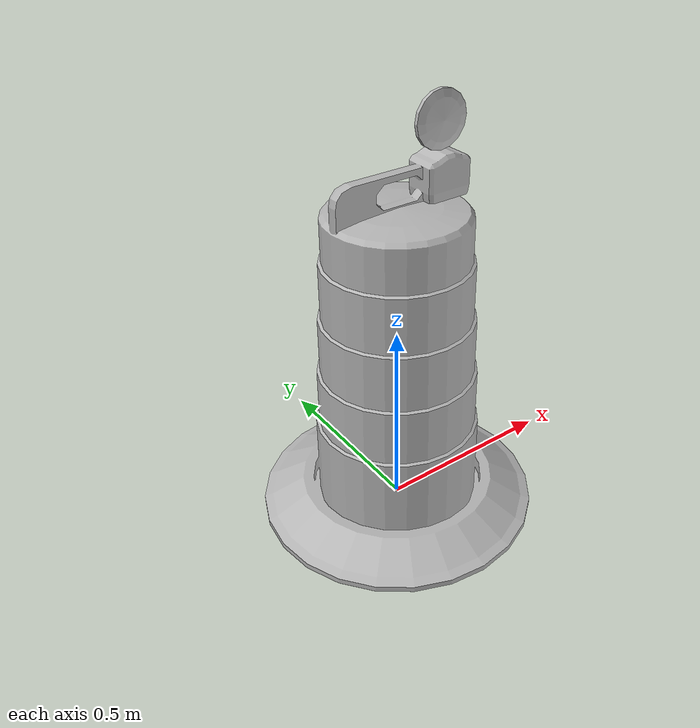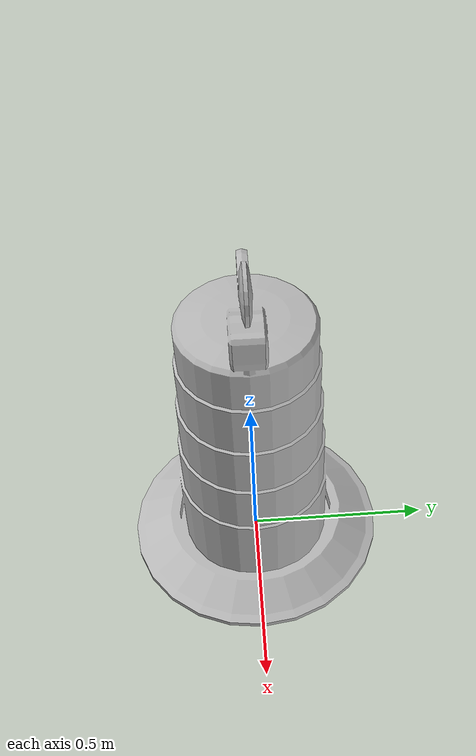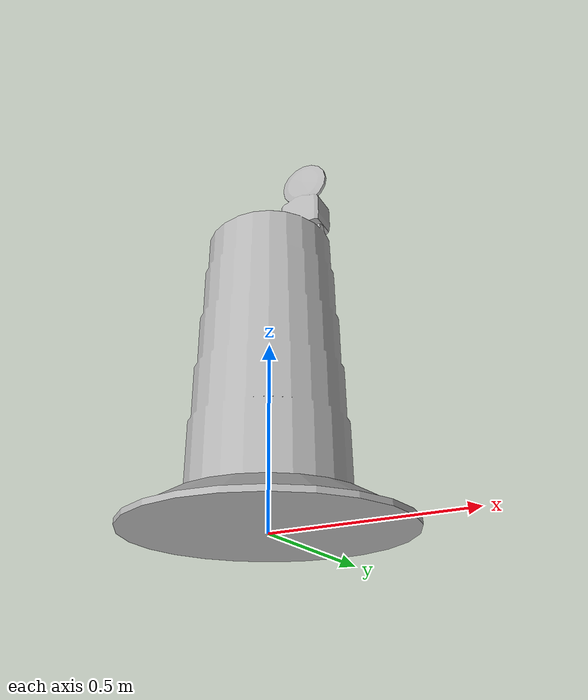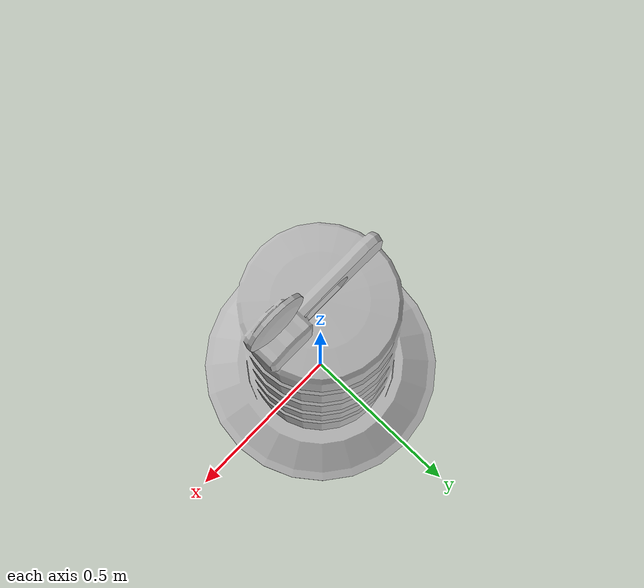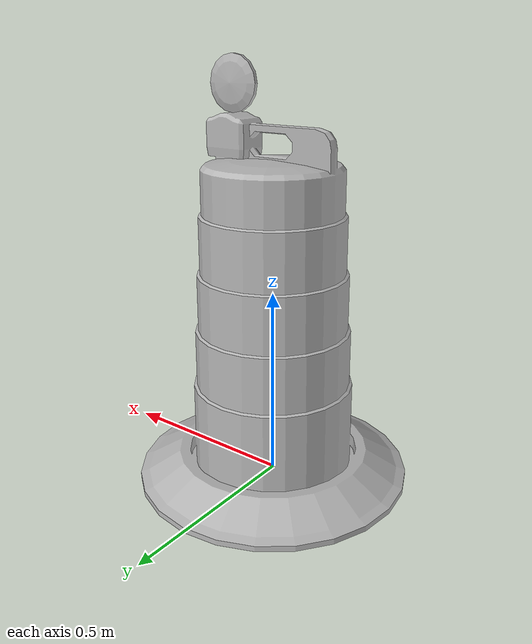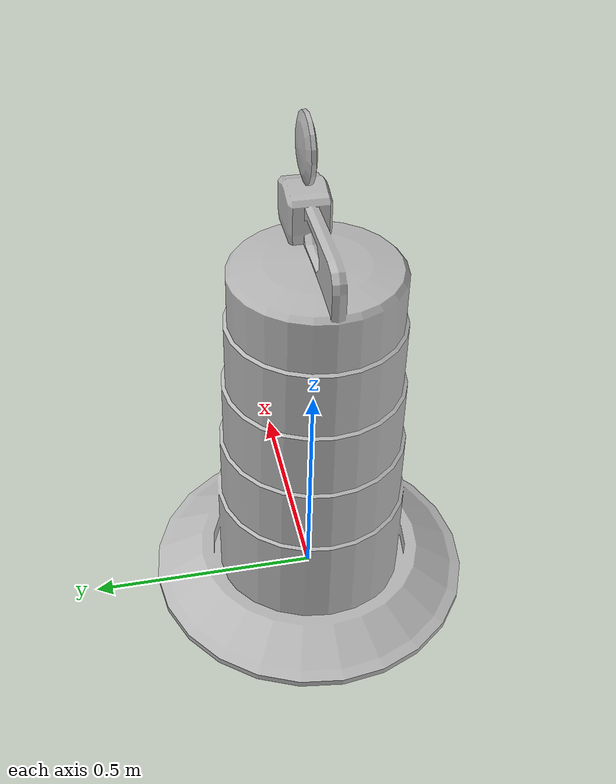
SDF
<?xml version="1.0" ?>
<sdf version="1.5">
  <model name="Construction Barrel">
    <link name="link">
      <inertial>
        <pose>0 0 0.4 0 0 0</pose>
        <mass>500</mass>
        <inertia>
          <ixx>51.2096</ixx>
          <iyy>51.2096</iyy>
          <izz>25</izz>
          <ixy>0</ixy>
          <ixz>0</ixz>
        </inertia>
      </inertial>
      <collision name="collision">
        <geometry>
          <mesh>
            <uri>model://construction_barrel/meshes/construction_barrel.dae</uri>
            <scale>0.7 0.7 0.7</scale>
          </mesh>
        </geometry>
      </collision>
      <visual name="visual">
        <geometry>
          <mesh>
            <uri>model://construction_barrel/meshes/construction_barrel.dae</uri>
            <scale>0.7 0.7 0.7</scale>
          </mesh>
        </geometry>
      </visual>
    </link>
  </model>
</sdf>
